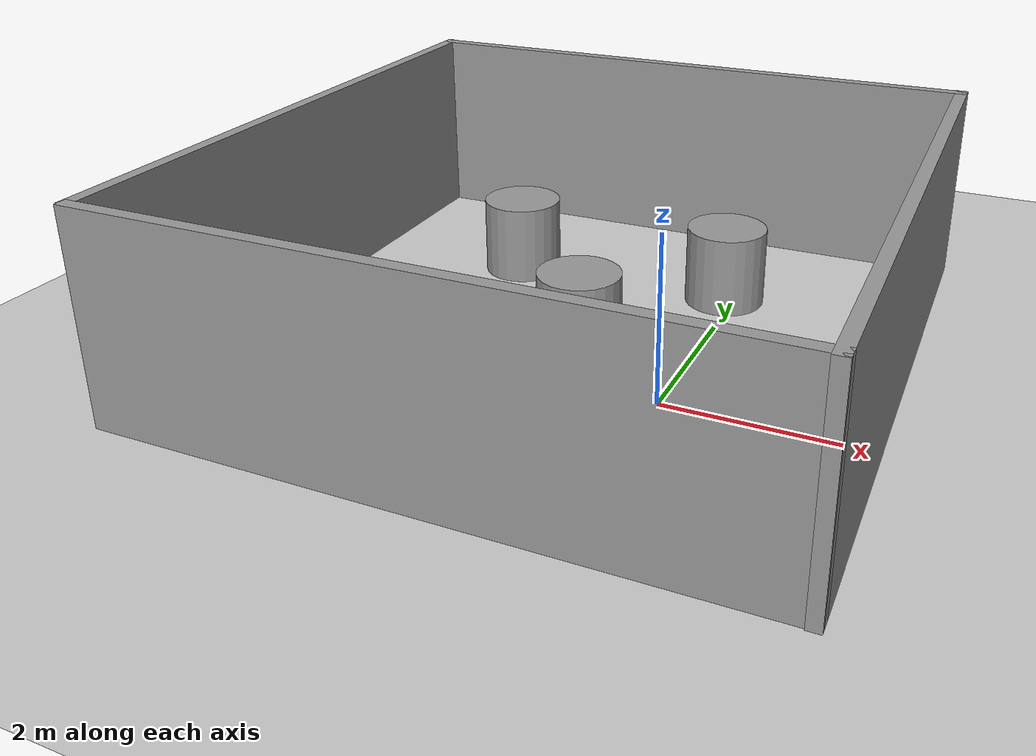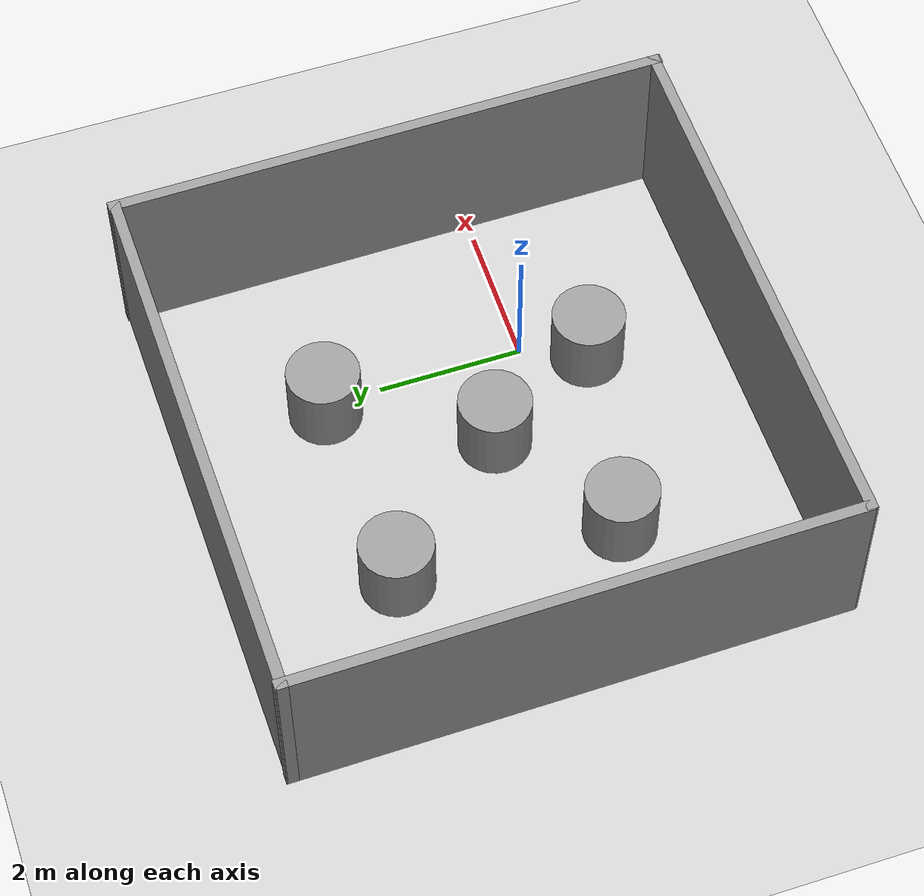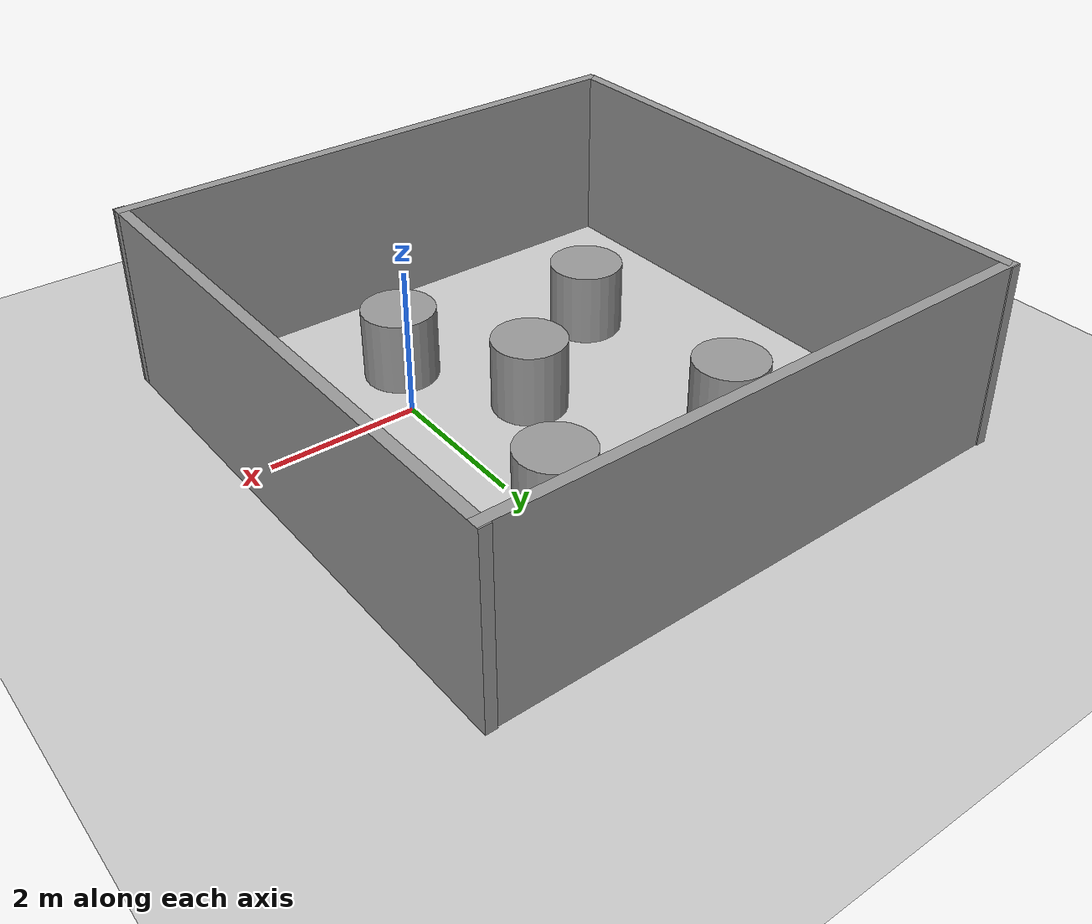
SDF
<sdf version="1.7">
 <world name="default">
  <light name="sun" type="directional">
   <pose>0 0 10 0 -0 0</pose>
   <diffuse>0.8 0.8 0.8 1</diffuse>
   <specular>0.2 0.2 0.2 1</specular>
   <attenuation>
    <range>1000</range>
    <constant>0.9</constant>
    <linear>0.01</linear>
    <quadratic>0.001</quadratic>
   </attenuation>
   <direction>-0.5 0.1 -0.9</direction>
   <spot><inner_angle>0</inner_angle><outer_angle>0</outer_angle><falloff>0</falloff></spot>
  </light>
  <model name="ground_plane">
   <static>1</static>
   <link name="link">
    <collision name="collision">
     <geometry><plane><normal>0 0 1</normal><size>100 100</size></plane></geometry>
     <surface>
      <contact><collide_bitmask>65535</collide_bitmask></contact>
      <friction><ode><mu>100</mu><mu2>50</mu2></ode></friction>
     </surface>
    </collision>
    <visual name="visual">
     <cast_shadows>0</cast_shadows>
     <geometry><plane><normal>0 0 1</normal><size>100 100</size></plane></geometry>
     <material>
      <script><uri>file://media/materials/scripts/gazebo.material</uri><name>Gazebo/Grey</name></script>
     </material>
    </visual>
   </link>
  </model>
  <gravity>0 0 -9.8</gravity>
  <magnetic_field>6e-06 2.3e-05 -4.2e-05</magnetic_field>
  <atmosphere type="adiabatic"/>
  <physics type="ode">
   <max_step_size>0.001</max_step_size>
   <real_time_factor>1</real_time_factor>
   <real_time_update_rate>1000</real_time_update_rate>
  </physics>
  <scene><ambient>0.4 0.4 0.4 1</ambient><background>0.7 0.7 0.7 1</background><shadows>1</shadows></scene>
  <spherical_coordinates>
   <surface_model>EARTH_WGS84</surface_model>
   <latitude_deg>0</latitude_deg>
   <longitude_deg>0</longitude_deg>
   <elevation>0</elevation>
   <heading_deg>0</heading_deg>
  </spherical_coordinates>
  <model name="7x7">
   <pose>-1.41399 1.05816 0 0 -0 0</pose>
   <link name="Wall_5">
    <collision name="Wall_5_Collision">
     <geometry><box><size>7.67714 0.15 2.5</size></box></geometry>
     <pose>0 0 1.25 0 -0 0</pose>
    </collision>
    <visual name="Wall_5_Visual">
     <pose>0 0 1.25 0 -0 0</pose>
     <geometry><box><size>7.67714 0.15 2.5</size></box></geometry>
     <material>
      <script><uri>file://media/materials/scripts/gazebo.material</uri><name>Gazebo/Grey</name></script>
      <ambient>1 1 1 1</ambient>
     </material>
     <meta><layer>0</layer></meta>
    </visual>
    <pose>-3.73884 -0.023751 0 0 -0 -1.5615</pose>
   </link>
   <link name="Wall_6">
    <collision name="Wall_6_Collision">
     <geometry><box><size>7.61035 0.15 2.5</size></box></geometry>
     <pose>0 0 1.25 0 -0 0</pose>
    </collision>
    <visual name="Wall_6_Visual">
     <pose>0 0 1.25 0 -0 0</pose>
     <geometry><box><size>7.61035 0.15 2.5</size></box></geometry>
     <material>
      <script><uri>file://media/materials/scripts/gazebo.material</uri><name>Gazebo/Grey</name></script>
      <ambient>1 1 1 1</ambient>
     </material>
     <meta><layer>0</layer></meta>
    </visual>
    <pose>0.043709 -3.79603 0 0 -0 0.007033</pose>
   </link>
   <link name="Wall_7">
    <collision name="Wall_7_Collision">
     <geometry><box><size>7.75955 0.15 2.5</size></box></geometry>
     <pose>0 0 1.25 0 -0 0</pose>
    </collision>
    <visual name="Wall_7_Visual">
     <pose>0 0 1.25 0 -0 0</pose>
     <geometry><box><size>7.75955 0.15 2.5</size></box></geometry>
     <material>
      <script><uri>file://media/materials/scripts/gazebo.material</uri><name>Gazebo/Grey</name></script>
      <ambient>1 1 1 1</ambient>
     </material>
     <meta><layer>0</layer></meta>
    </visual>
    <pose>3.73007 0.017405 0 0 -0 1.58229</pose>
   </link>
   <link name="Wall_8">
    <collision name="Wall_8_Collision">
     <geometry><box><size>7.61062 0.15 2.5</size></box></geometry>
     <pose>0 0 1.25 0 -0 0</pose>
    </collision>
    <visual name="Wall_8_Visual">
     <pose>0 0 1.25 0 -0 0</pose>
     <geometry><box><size>7.61062 0.15 2.5</size></box></geometry>
     <material>
      <script><uri>file://media/materials/scripts/gazebo.material</uri><name>Gazebo/Grey</name></script>
      <ambient>1 1 1 1</ambient>
     </material>
     <meta><layer>0</layer></meta>
    </visual>
    <pose>-0.043741 3.76344 0 0 -0 -3.13056</pose>
   </link>
   <static>1</static>
  </model>
  <model name="5obstacles">
   <link name="link_0">
    <inertial>
     <mass>1</mass>
     <inertia><ixx>0.145833</ixx><ixy>0</ixy><ixz>0</ixz><iyy>0.145833</iyy><iyz>0</iyz><izz>0.125</izz></inertia>
    </inertial>
    <pose>-1.38701 1.66285 0 0 -0 0</pose>
    <visual name="visual">
     <geometry><cylinder><radius>0.5</radius><length>1</length></cylinder></geometry>
     <material>
      <lighting>1</lighting>
      <script><uri>file://media/materials/scripts/gazebo.material</uri><name>Gazebo/Grey</name></script>
      <shader type="pixel"/>
     </material>
    </visual>
    <collision name="collision">
     <geometry><cylinder><radius>0.5</radius><length>1</length></cylinder></geometry>
     <surface>
      <friction>
       <ode><mu>1</mu><mu2>1</mu2><fdir1>0 0 0</fdir1><slip1>0</slip1><slip2>0</slip2></ode>
       <torsional>
        <coefficient>1</coefficient>
        <patch_radius>0</patch_radius>
        <surface_radius>0</surface_radius>
        <use_patch_radius>1</use_patch_radius>
        <ode><slip>0</slip></ode>
       </torsional>
      </friction>
      <bounce><restitution_coefficient>0</restitution_coefficient><threshold>1e+06</threshold></bounce>
      <contact>
       <collide_without_contact>0</collide_without_contact>
       <collide_without_contact_bitmask>1</collide_without_contact_bitmask>
       <collide_bitmask>1</collide_bitmask>
       <ode>
        <soft_cfm>0</soft_cfm>
        <soft_erp>0.2</soft_erp>
        <kp>1e+13</kp>
        <kd>1</kd>
        <max_vel>0.01</max_vel>
        <min_depth>0</min_depth>
       </ode>
       <bullet>
        <split_impulse>1</split_impulse>
        <split_impulse_penetration_threshold>-0.01</split_impulse_penetration_threshold>
        <soft_cfm>0</soft_cfm>
        <soft_erp>0.2</soft_erp>
        <kp>1e+13</kp>
        <kd>1</kd>
       </bullet>
      </contact>
     </surface>
    </collision>
   </link>
   <link name="link_1">
    <inertial>
     <mass>1</mass>
     <inertia><ixx>0.145833</ixx><ixy>0</ixy><ixz>0</ixz><iyy>0.145833</iyy><iyz>0</iyz><izz>0.125</izz></inertia>
    </inertial>
    <pose>-1.5273 -1.35413 0 0 -0 0</pose>
    <visual name="visual">
     <geometry><cylinder><radius>0.5</radius><length>1</length></cylinder></geometry>
     <material>
      <lighting>1</lighting>
      <script><uri>file://media/materials/scripts/gazebo.material</uri><name>Gazebo/Grey</name></script>
      <shader type="pixel"/>
     </material>
    </visual>
    <collision name="collision">
     <geometry><cylinder><radius>0.5</radius><length>1</length></cylinder></geometry>
     <surface>
      <friction>
       <ode><mu>1</mu><mu2>1</mu2><fdir1>0 0 0</fdir1><slip1>0</slip1><slip2>0</slip2></ode>
       <torsional>
        <coefficient>1</coefficient>
        <patch_radius>0</patch_radius>
        <surface_radius>0</surface_radius>
        <use_patch_radius>1</use_patch_radius>
        <ode><slip>0</slip></ode>
       </torsional>
      </friction>
      <bounce><restitution_coefficient>0</restitution_coefficient><threshold>1e+06</threshold></bounce>
      <contact>
       <collide_without_contact>0</collide_without_contact>
       <collide_without_contact_bitmask>1</collide_without_contact_bitmask>
       <collide_bitmask>1</collide_bitmask>
       <ode>
        <soft_cfm>0</soft_cfm>
        <soft_erp>0.2</soft_erp>
        <kp>1e+13</kp>
        <kd>1</kd>
        <max_vel>0.01</max_vel>
        <min_depth>0</min_depth>
       </ode>
       <bullet>
        <split_impulse>1</split_impulse>
        <split_impulse_penetration_threshold>-0.01</split_impulse_penetration_threshold>
        <soft_cfm>0</soft_cfm>
        <soft_erp>0.2</soft_erp>
        <kp>1e+13</kp>
        <kd>1</kd>
       </bullet>
      </contact>
     </surface>
    </collision>
   </link>
   <link name="link_2">
    <inertial>
     <mass>1</mass>
     <inertia><ixx>0.145833</ixx><ixy>0</ixy><ixz>0</ixz><iyy>0.145833</iyy><iyz>0</iyz><izz>0.125</izz></inertia>
    </inertial>
    <pose>0.285814 -0.231463 0 0 -0 0</pose>
    <visual name="visual">
     <geometry><cylinder><radius>0.5</radius><length>1</length></cylinder></geometry>
     <material>
      <lighting>1</lighting>
      <script><uri>file://media/materials/scripts/gazebo.material</uri><name>Gazebo/Grey</name></script>
      <shader type="pixel"/>
     </material>
    </visual>
    <collision name="collision">
     <geometry><cylinder><radius>0.5</radius><length>1</length></cylinder></geometry>
     <surface>
      <friction>
       <ode><mu>1</mu><mu2>1</mu2><fdir1>0 0 0</fdir1><slip1>0</slip1><slip2>0</slip2></ode>
       <torsional>
        <coefficient>1</coefficient>
        <patch_radius>0</patch_radius>
        <surface_radius>0</surface_radius>
        <use_patch_radius>1</use_patch_radius>
        <ode><slip>0</slip></ode>
       </torsional>
      </friction>
      <bounce><restitution_coefficient>0</restitution_coefficient><threshold>1e+06</threshold></bounce>
      <contact>
       <collide_without_contact>0</collide_without_contact>
       <collide_without_contact_bitmask>1</collide_without_contact_bitmask>
       <collide_bitmask>1</collide_bitmask>
       <ode>
        <soft_cfm>0</soft_cfm>
        <soft_erp>0.2</soft_erp>
        <kp>1e+13</kp>
        <kd>1</kd>
        <max_vel>0.01</max_vel>
        <min_depth>0</min_depth>
       </ode>
       <bullet>
        <split_impulse>1</split_impulse>
        <split_impulse_penetration_threshold>-0.01</split_impulse_penetration_threshold>
        <soft_cfm>0</soft_cfm>
        <soft_erp>0.2</soft_erp>
        <kp>1e+13</kp>
        <kd>1</kd>
       </bullet>
      </contact>
     </surface>
    </collision>
   </link>
   <link name="link_3">
    <inertial>
     <mass>1</mass>
     <inertia><ixx>0.145833</ixx><ixy>0</ixy><ixz>0</ixz><iyy>0.145833</iyy><iyz>0</iyz><izz>0.125</izz></inertia>
    </inertial>
    <pose>1.19587 -1.86555 0 0 -0 0</pose>
    <visual name="visual">
     <geometry><cylinder><radius>0.5</radius><length>1</length></cylinder></geometry>
     <material>
      <lighting>1</lighting>
      <script><uri>file://media/materials/scripts/gazebo.material</uri><name>Gazebo/Grey</name></script>
      <shader type="pixel"/>
     </material>
    </visual>
    <collision name="collision">
     <geometry><cylinder><radius>0.5</radius><length>1</length></cylinder></geometry>
     <surface>
      <friction>
       <ode><mu>1</mu><mu2>1</mu2><fdir1>0 0 0</fdir1><slip1>0</slip1><slip2>0</slip2></ode>
       <torsional>
        <coefficient>1</coefficient>
        <patch_radius>0</patch_radius>
        <surface_radius>0</surface_radius>
        <use_patch_radius>1</use_patch_radius>
        <ode><slip>0</slip></ode>
       </torsional>
      </friction>
      <bounce><restitution_coefficient>0</restitution_coefficient><threshold>1e+06</threshold></bounce>
      <contact>
       <collide_without_contact>0</collide_without_contact>
       <collide_without_contact_bitmask>1</collide_without_contact_bitmask>
       <collide_bitmask>1</collide_bitmask>
       <ode>
        <soft_cfm>0</soft_cfm>
        <soft_erp>0.2</soft_erp>
        <kp>1e+13</kp>
        <kd>1</kd>
        <max_vel>0.01</max_vel>
        <min_depth>0</min_depth>
       </ode>
       <bullet>
        <split_impulse>1</split_impulse>
        <split_impulse_penetration_threshold>-0.01</split_impulse_penetration_threshold>
        <soft_cfm>0</soft_cfm>
        <soft_erp>0.2</soft_erp>
        <kp>1e+13</kp>
        <kd>1</kd>
       </bullet>
      </contact>
     </surface>
    </collision>
   </link>
   <link name="link_4">
    <inertial>
     <mass>1</mass>
     <inertia><ixx>0.145833</ixx><ixy>0</ixy><ixz>0</ixz><iyy>0.145833</iyy><iyz>0</iyz><izz>0.125</izz></inertia>
    </inertial>
    <pose>1.43263 1.78829 0 0 -0 0</pose>
    <visual name="visual">
     <geometry><cylinder><radius>0.5</radius><length>1</length></cylinder></geometry>
     <material>
      <lighting>1</lighting>
      <script><uri>file://media/materials/scripts/gazebo.material</uri><name>Gazebo/Grey</name></script>
      <shader type="pixel"/>
     </material>
    </visual>
    <collision name="collision">
     <geometry><cylinder><radius>0.5</radius><length>1</length></cylinder></geometry>
     <surface>
      <friction>
       <ode><mu>1</mu><mu2>1</mu2><fdir1>0 0 0</fdir1><slip1>0</slip1><slip2>0</slip2></ode>
       <torsional>
        <coefficient>1</coefficient>
        <patch_radius>0</patch_radius>
        <surface_radius>0</surface_radius>
        <use_patch_radius>1</use_patch_radius>
        <ode><slip>0</slip></ode>
       </torsional>
      </friction>
      <bounce><restitution_coefficient>0</restitution_coefficient><threshold>1e+06</threshold></bounce>
      <contact>
       <collide_without_contact>0</collide_without_contact>
       <collide_without_contact_bitmask>1</collide_without_contact_bitmask>
       <collide_bitmask>1</collide_bitmask>
       <ode>
        <soft_cfm>0</soft_cfm>
        <soft_erp>0.2</soft_erp>
        <kp>1e+13</kp>
        <kd>1</kd>
        <max_vel>0.01</max_vel>
        <min_depth>0</min_depth>
       </ode>
       <bullet>
        <split_impulse>1</split_impulse>
        <split_impulse_penetration_threshold>-0.01</split_impulse_penetration_threshold>
        <soft_cfm>0</soft_cfm>
        <soft_erp>0.2</soft_erp>
        <kp>1e+13</kp>
        <kd>1</kd>
       </bullet>
      </contact>
     </surface>
    </collision>
   </link>
   <static>0</static>
   <pose>-1.56552 1.02499 0.5 0 -0 0</pose>
  </model>
 </world>
</sdf>
